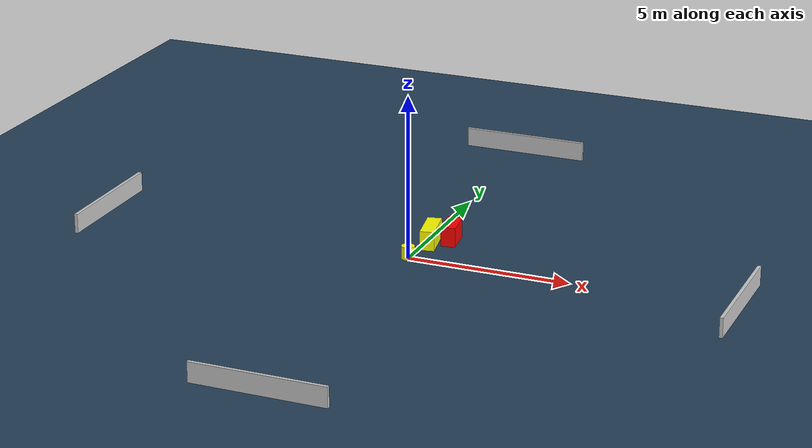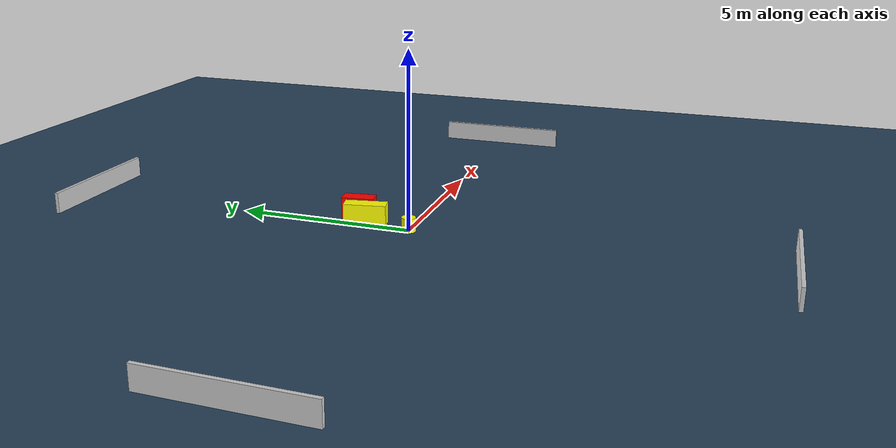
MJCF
<?xml version="1.0" ?>
<mujoco model="generated_environment">
  <option timestep="0.01" integrator="RK4" cone="elliptic"/>
  <default>
    <geom density="1"/>
  </default>
  <asset>
    <texture builtin="gradient" height="3072" name="skybox" rgb1="0.3 0.5 0.7" rgb2="0 0 0" type="skybox" width="512"/>
    <texture builtin="checker" height="300" name="groundplane" rgb1="0.2 0.3 0.4" rgb2="0.1 0.2 0.3" type="2d" width="300"/>
    <material name="groundplane" reflectance="0.2" texrepeat="5 5" texture="groundplane"/>
  </asset>
  <worldbody>
    <light dir="0 0 -1" directional="true" pos="0 0 1.5"/>
    <geom condim="3" friction="0.5 0.005 0.001" material="groundplane" name="floor" pos="0 0 0" size="0 0 0.05" type="plane"/>
    <body name="walls">
      <geom name="wall_1" condim="4" pos="-10.0 0.0 0.3" rgba="0.800000011920929 0.800000011920929 0.800000011920929 1.0" size="0.05 2.0 0.3" type="box"/>
      <geom name="wall_2" condim="4" pos="10.0 0.0 0.3" rgba="0.800000011920929 0.800000011920929 0.800000011920929 1.0" size="0.05 2.0 0.3" type="box"/>
      <geom name="wall_3" condim="4" pos="0.0 -10.0 0.3" rgba="0.800000011920929 0.800000011920929 0.800000011920929 1.0" size="2.0 0.05 0.3" type="box"/>
      <geom name="wall_4" condim="4" pos="0.0 10.0 0.3" rgba="0.800000011920929 0.800000011920929 0.800000011920929 1.0" size="2.0 0.05 0.3" type="box"/>
    </body>
    <body name="robot">
      <joint name="joint_x" type="slide" pos="0 0 0" axis="1 0 0"/>
      <joint name="joint_y" type="slide" pos="0 0 0" axis="0 1 0"/>
      <geom name="robot" type="cylinder" pos="0.0 0.0 0.2" size="0.2 0.2 0.0" mass="5.0" friction="1.0 0.005 0.0001" condim="4" rgba="1.0 1.0 0.0 1.0"/>
    </body>
    <body name="obstacle_1_movable">
      <geom name="obstacle_1_movable" condim="4" pos="0.17410791047839408 1.3368782570682687 0.3" euler="0 0 190.78274417883668" friction="0.0 0.005 0.001" rgba="1.0 1.0 0.0 1.0" size="0.21721526563906668 0.5976975840201596 0.3" type="box" mass="0.1"/>
      <joint type="free"/>
    </body>
    <body name="obstacle_2_static">
      <geom name="obstacle_2_static" condim="4" pos="0.6758860629003841 1.73681432861416 0.3" euler="0 0 277.9697272923232" friction="0.0 0.005 0.001" rgba="1.0 0.0 0.0 1.0" size="0.45873039589234804 0.2223179267818747 0.3" type="box"/>
    </body>
  </worldbody>
  <actuator>
    <motor name="actuator_x" joint="joint_x" gear="1" ctrlrange="-1 1"/>
    <motor name="actuator_y" joint="joint_y" gear="1" ctrlrange="-1 1"/>
  </actuator>
</mujoco>
